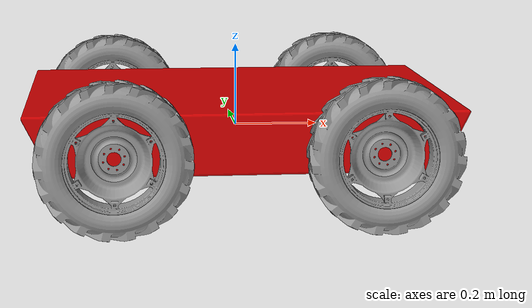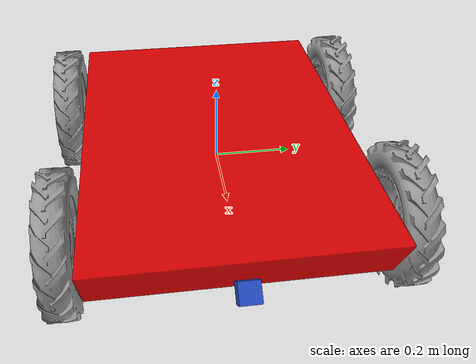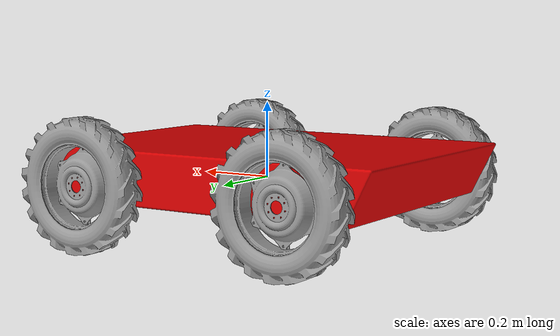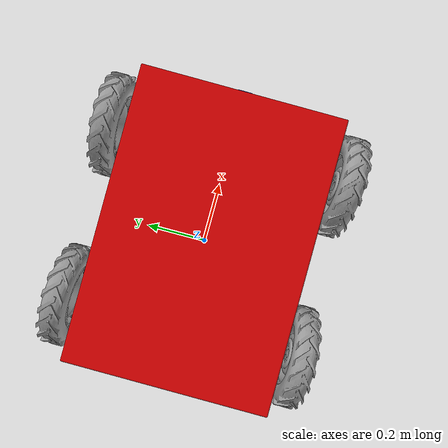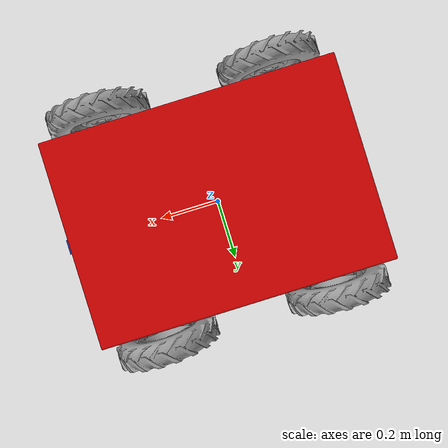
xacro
<?xml version='1.0'?>

<robot name="myrobot" xmlns:xacro="http://www.ros.org/wiki/xacro">

   <xacro:property name="cameraSize" value="0.05"/>
  <xacro:property name="cameraMass" value="0.1"/>

  <xacro:include filename="$(find mybot_description)/urdf/mybot.gazebo" />
  <xacro:include filename="$(find mybot_description)/urdf/materials.xacro" />
  <xacro:include filename="$(find mybot_description)/urdf/macros.xacro" />

  <link name='chassis'>
    <pose>0 0 0.1 0 0 0</pose>

    <inertial>
      <mass value="40.0"/>
      <origin xyz="0 0.35 -0.05" rpy="1.5707 0 0"/>
      <inertia ixx="0.3338" ixy="0.0" ixz="0.0" iyy="0.4783" iyz="0.0" izz="0.3338"/>
    </inertial>

    <collision name='collision'>
      <origin xyz="0 0 0" rpy="0 0 1.5707"/>
      <geometry>
        <mesh filename="package://mybot_description/meshes/base_link.dae"/>
      </geometry>
    </collision>

    <visual name='chassis_visual'>
      <origin xyz="0 0.35 -0.05" rpy="1.5707 0 0"/>
      <geometry>
        <mesh filename="package://mybot_description/meshes/base_link.dae"/>
      </geometry>
      <material name="ChassisRed">
        <color rgba="0.851 0.0 0.0 1.0"/>
      </material>
    </visual>
  </link>
  <gazebo reference="chassis">
    <material value="Gazebo/Red"/>
  </gazebo>

  <link name="front_left_hub">

    <collision name="collision">
      <origin xyz="0 0 0" rpy="0 1.5707 1.5707"/>
      <geometry>
        <mesh filename="package://mybot_description/meshes/int3.dae"/>
      </geometry>
    </collision>
    <visual name="front_left_hub_visual">
      <origin xyz="0 0 0" rpy="0 1.5707 1.5707"/>
      <geometry>
        <mesh filename="package://mybot_description/meshes/int3.dae"/>
      </geometry>
    </visual>
    <inertial>
      <origin xyz="0 0 0" rpy="0 1.5707 1.5707"/>
      <mass value="2"/>
      <cylinder_inertia m="0.1" r="0.175" h="0.8"/>
      <inertia ixx="0.012411765597" ixy="0" ixz="0" iyy="0.015218160428" iyz="0" izz="0.011763977943"/>
    </inertial>
  </link>
  <gazebo reference="front_left_hub">
    <material value="Gazebo/Red"/>
  </gazebo>

 <link name="front_left_wheel">
    <!--origin xyz="0.1 0.13 0.1" rpy="0 1.5707 1.5707"/-->
    <collision name="collision">
      <origin xyz="0 0 0" rpy="0 0 1.5707"/>
      <geometry>
        <mesh filename="package://mybot_description/meshes/rear.dae"/>
      </geometry>
    </collision>
    <visual name="front_left_wheel_visual">
      <origin xyz="0 0 0" rpy="0 0 1.5707"/>
      <geometry>
        <mesh filename="package://mybot_description/meshes/rear.dae"/>
      </geometry>
    </visual>
    <inertial>
      <origin xyz="0 0 0" rpy="1.5707 1.5707 1.5707"/>
      <mass value="2"/>
      <cylinder_inertia m="2" r="0.175" h="0.8"/>
      <inertia ixx="0.012411765597" ixy="0" ixz="0" iyy="0.015218160428" iyz="0" izz="0.011763977943"/>
    </inertial>
  </link>

  <link name="front_right_hub">

    <collision name="collision">
      <origin xyz="0 0 0" rpy="0 1.5707 1.5707"/>
      <geometry>
        <mesh filename="package://mybot_description/meshes/int3.dae"/>
      </geometry>
    </collision>
    <visual name="front_right_hub_visual">
      <origin xyz="0 0 0" rpy="0 1.5707 1.5707"/>
      <geometry>
        <mesh filename="package://mybot_description/meshes/int3.dae"/>
      </geometry>
    </visual>
    <inertial>
      <origin xyz="0 0 0" rpy="0 1.5707 1.5707"/>
      <mass value="2"/>
      <cylinder_inertia m="0.1" r="0.175" h="0.8"/>
      <inertia ixx="0.012411765597" ixy="0" ixz="0" iyy="0.015218160428" iyz="0" izz="0.011763977943"/>
    </inertial>
  </link>
    <gazebo reference="front_right_hub">
    <material value="Gazebo/Red"/>
  </gazebo>

  <link name="front_right_wheel">
    <!--origin xyz="0.1 -0.13 0.1" rpy="0 1.5707 1.5707"/-->
    <collision name="collision">
      <origin xyz="0 0 0" rpy="0 0 1.5707"/>
      <geometry>
        <mesh filename="package://mybot_description/meshes/rear.dae"/>
      </geometry>
    </collision>
    <visual name="front_right_wheel_visual">
      <origin xyz="0 0 0" rpy="0 0 1.5707"/>
      <geometry>
        <mesh filename="package://mybot_description/meshes/rear.dae"/>
      </geometry>
    </visual>
    <inertial>
      <origin xyz="0 0 0" rpy="0 1.5707 1.5707"/>
      <mass value="2"/>
      <cylinder_inertia m="2" r="0.175" h="0.08"/>
      <inertia ixx="0.012411765597" ixy="0" ixz="0" iyy="0.015218160428" iyz="0" izz="0.011763977943"/>
    </inertial>
  </link>

  <link name="back_left_hub">

    <collision name="collision">
      <origin xyz="0 0 0" rpy="0 1.5707 1.5707"/>
      <geometry>
        <mesh filename="package://mybot_description/meshes/int3.dae"/>
      </geometry>
    </collision>
    <visual name="back_left_hub_visual">
      <origin xyz="0 0 0" rpy="0 1.5707 1.5707"/>
      <geometry>
        <mesh filename="package://mybot_description/meshes/int3.dae"/>
      </geometry>
    </visual>
    <inertial>
      <origin xyz="0 0 0" rpy="0 1.5707 1.5707"/>
      <mass value="2"/>
      <cylinder_inertia m="0.1" r="0.175" h="0.8"/>
      <inertia ixx="0.012411765597" ixy="0" ixz="0" iyy="0.015218160428" iyz="0" izz="0.011763977943"/>
    </inertial>
  </link>
  <gazebo reference="back_left_hub">
    <material value="Gazebo/Red"/>
  </gazebo>

    <link name="back_left_wheel">
    <!--origin xyz="0.1 0.13 0.1" rpy="0 1.5707 1.5707"/-->
    <collision name="collision">
      <origin xyz="0 0 0" rpy="0 0 1.5707"/>
      <geometry>
        <mesh filename="package://mybot_description/meshes/rear.dae"/>
      </geometry>
    </collision>
    <visual name="back_left_wheel_visual">
      <origin xyz="0 0 0" rpy="0 0 1.5707"/>
      <geometry>
        <mesh filename="package://mybot_description/meshes/rear.dae"/>
      </geometry>
    </visual>
    <inertial>
      <origin xyz="0 0 0" rpy="0 1.5707 1.5707"/>
      <mass value="2"/>
      <cylinder_inertia m="2" r="0.175" h="0.08"/>
      <inertia ixx="0.012411765597" ixy="0" ixz="0" iyy="0.015218160428" iyz="0" izz="0.011763977943"/>
    </inertial>
  </link>

  <link name="back_right_hub">

    <collision name="collision">
      <origin xyz="0 0 0" rpy="0 1.5707 1.5707"/>
      <geometry>
        <mesh filename="package://mybot_description/meshes/int3.dae"/>
      </geometry>
    </collision>
    <visual name="back_right_hub_visual">
      <origin xyz="0 0 0" rpy="0 1.5707 1.5707"/>
      <geometry>
        <mesh filename="package://mybot_description/meshes/int3.dae"/>
      </geometry>
    </visual>
    <inertial>
      <origin xyz="0 0 0" rpy="0 0 1.5707"/>
      <mass value="2"/>
      <cylinder_inertia m="0.1" r="0.175" h="0.8"/>
      <inertia ixx="0.012411765597" ixy="0" ixz="0" iyy="0.015218160428" iyz="0" izz="0.011763977943"/>
    </inertial>
  </link>
  <gazebo reference="back_right_hub">
    <material value="Gazebo/Red"/>
  </gazebo>

  <link name="back_right_wheel">
    <!--origin xyz="0.1 -0.13 0.1" rpy="0 1.5707 1.5707"/-->
    <collision name="collision">
      <origin xyz="0 0 0" rpy="0 0 1.5707"/>
      <geometry>
        <mesh filename="package://mybot_description/meshes/rear.dae"/>
      </geometry>
    </collision>
    <visual name="back_right_wheel_visual">
      <origin xyz="0 0 0" rpy="0 0 1.5707"/>
      <geometry>
        <mesh filename="package://mybot_description/meshes/rear.dae"/>
      </geometry>
    </visual>

    <inertial>
      <origin xyz="0 0 0" rpy="0 1.5707 1.5707"/>
      <mass value="2"/>
      <cylinder_inertia m="2" r="0.175" h="0.08"/>
      <inertia ixx="0.012411765597" ixy="0" ixz="0" iyy="0.015218160428" iyz="0" izz="0.011763977943"/>
    </inertial>
  </link>

  <gazebo reference="back_left_wheel">
    <kp>1000000.0</kp>
    <!-- kp and kd for rubber -->
    <kd>100.0</kd>
    <mu1>1.0</mu1>
    <!-- was 10 -->
    <mu2>1.0</mu2>
    <!-- fdir1 0 1 0 /fdir1 -->
    <!-- see http://github.com/MobileRobots/amr-ros-config/issues/6 -->
    <maxVel>1.0</maxVel>
    <minDepth>0.00</minDepth>
    <material value="Gazebo/Black"/>
  </gazebo>
  <gazebo reference="front_left_wheel">
    <kp>1000000.0</kp>
    <!-- kp and kd for rubber -->
    <kd>100.0</kd>
    <mu1>1.0</mu1>
    <!-- was 10 -->
    <mu2>1.0</mu2>
    <!-- fdir1 0 1 0 /fdir1 -->
    <!-- see http://github.com/MobileRobots/amr-ros-config/issues/6 -->
    <maxVel>1.0</maxVel>
    <minDepth>0.00</minDepth>
    <material value="Gazebo/Black"/>
  </gazebo>
  <gazebo reference="back_right_wheel">
    <kp>1000000.0</kp>
    <!-- kp and kd for rubber -->
    <kd>100.0</kd>
    <mu1>1.0</mu1>
    <!-- was 10 -->
    <mu2>1.0</mu2>
    <!-- fdir1 0 1 0 /fdir1 -->
    <!-- see http://github.com/MobileRobots/amr-ros-config/issues/6 -->
    <maxVel>1.0</maxVel>
    <minDepth>0.00</minDepth>
    <material value="Gazebo/Black"/>
  </gazebo>
  <gazebo reference="front_right_wheel">
    <kp>1000000.0</kp>
    <!-- kp and kd for rubber -->
    <kd>100.0</kd>
    <mu1>1.0</mu1>
    <!-- was 10 -->
    <mu2>1.0</mu2>
    <!-- fdir1 0 1 0 /fdir1 -->
    <!-- see http://github.com/MobileRobots/amr-ros-config/issues/6 -->
    <maxVel>1.0</maxVel>
    <minDepth>0.00</minDepth>
    <material value="Gazebo/Black"/>
  </gazebo>

  <joint type="continuous" name="front_left_wheel_hinge">
    <origin xyz="0.3 0.4 0" rpy="0 0 0"/>
    <child link="front_left_wheel"/>
    <parent link="chassis"/>
    <axis xyz="0 1 0" rpy="0 0 0"/>
    <limit effort="100" velocity="100"/>
    <joint_properties damping="0.0" friction="0.0"/>
  </joint>

  <joint type="fixed" name="front_left_hub_hinge">
    <origin xyz="0 0 0" rpy="0 0 0"/>
    <child link="front_left_hub"/>
    <parent link="front_left_wheel"/>
    <axis xyz="0 1 0" rpy="0 0 0"/>
    <limit effort="100" velocity="100"/>
    <joint_properties damping="0.0" friction="0.0"/>
  </joint>

  <joint type="continuous" name="front_right_wheel_hinge">
    <origin xyz="0.3 -0.4 0" rpy="0 0 0"/>
    <child link="front_right_wheel"/>
    <parent link="chassis"/>
    <axis xyz="0 1 0" rpy="0 0 0"/>
    <limit effort="100" velocity="100"/>
    <joint_properties damping="0.0" friction="0.0"/>
  </joint>

  <joint type="fixed" name="front_right_hub_hinge">
    <origin xyz="0 0 0" rpy="0 0 0"/>
    <child link="front_right_hub"/>
    <parent link="front_right_wheel"/>
    <axis xyz="0 1 0" rpy="0 0 0"/>
    <limit effort="100" velocity="100"/>
    <joint_properties damping="0.0" friction="0.0"/>
  </joint>

  <joint type="continuous" name="back_left_wheel_hinge">
    <origin xyz="-0.3 0.4 0" rpy="0 0 0"/>
    <child link="back_left_wheel"/>
    <parent link="chassis"/>
    <axis xyz="0 1 0" rpy="0 0 0"/>
    <limit effort="100" velocity="100"/>
    <joint_properties damping="0.0" friction="0.0"/>
  </joint>

  <joint type="fixed" name="back_left_hub_hinge">
    <origin xyz="0 0 0" rpy="0 0 0"/>
    <child link="back_left_hub"/>
    <parent link="back_left_wheel"/>
    <axis xyz="0 1 0" rpy="0 0 1.5707"/>
    <limit effort="100" velocity="100"/>
    <joint_properties damping="0.0" friction="0.0"/>
  </joint>

  <joint type="continuous" name="back_right_wheel_hinge">
    <origin xyz="-0.3 -0.4 0" rpy="0 0 0"/>
    <child link="back_right_wheel"/>
    <parent link="chassis"/>
    <axis xyz="0 1 0" rpy="0 0 0"/>
    <limit effort="100" velocity="100"/>
    <joint_properties damping="0.0" friction="0.0"/>
  </joint>

  <joint type="fixed" name="back_right_hub_hinge">
    <origin xyz="0 0 0" rpy="0 0 0"/>
    <child link="back_right_hub"/>
    <parent link="back_right_wheel"/>
    <axis xyz="0 1 0" rpy="0 0 1.5707"/>
    <limit effort="100" velocity="100"/>
    <joint_properties damping="0.0" friction="0.0"/>
  </joint>

  <!-- Camera -->
  <link name="camera_link">
    <collision>
      <origin xyz="0 0 0" rpy="0 0 0"/>
      <geometry>
    <box size="0.05 0.05 0.05"/>
      </geometry>
    </collision>

    <visual>
      <origin xyz="0 0 0" rpy="0 0 0"/>
      <geometry>
    <box size="0.05 0.05 0.05"/>
      </geometry>
      <material name="blue"/>
    </visual>

    <inertial>
      <mass value="1e-5" />
      <origin xyz="0 0 0" rpy="0 0 0"/>
      <inertia ixx="1e-6" ixy="0" ixz="0" iyy="1e-6" iyz="0" izz="1e-6" />
    </inertial>
  </link>

 <joint name="camera_joint" type="fixed">
    <axis xyz="0 1 0" />
    <origin xyz="0.5 0 0" rpy="0 0.785 0"/>
    <parent link="chassis"/>
    <child link="camera_link"/>
  </joint>

</robot>
